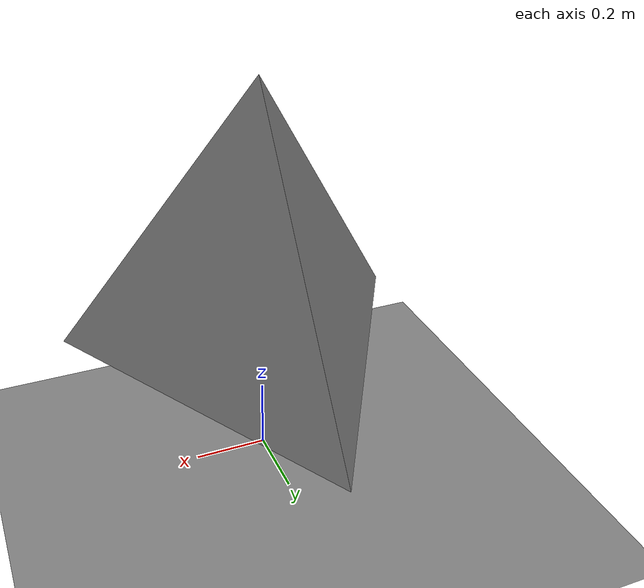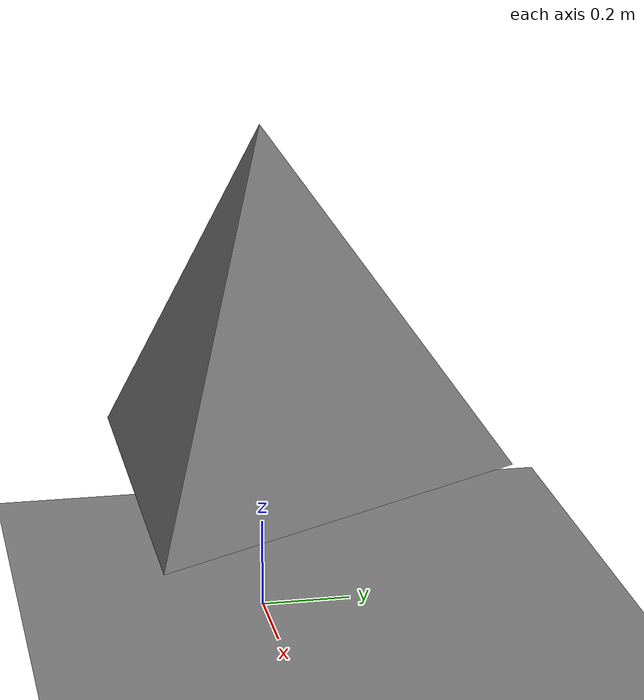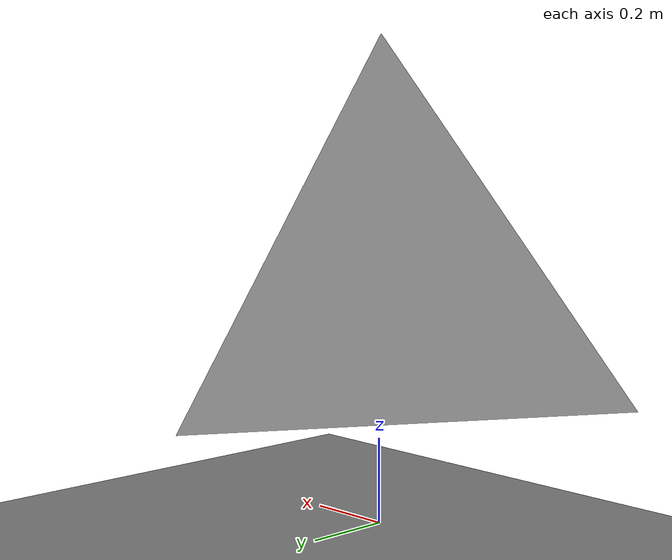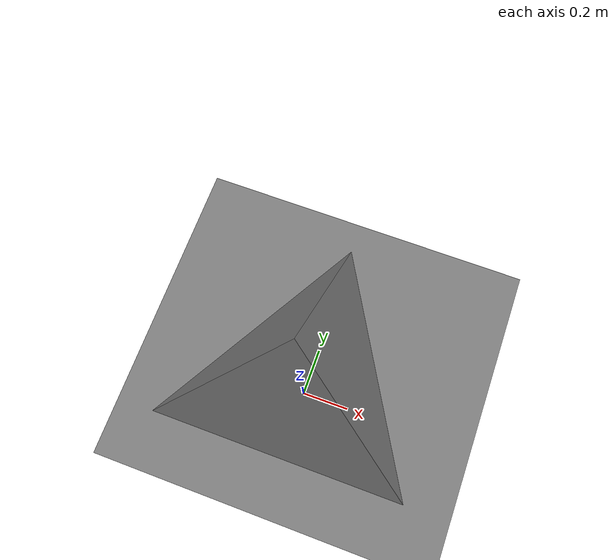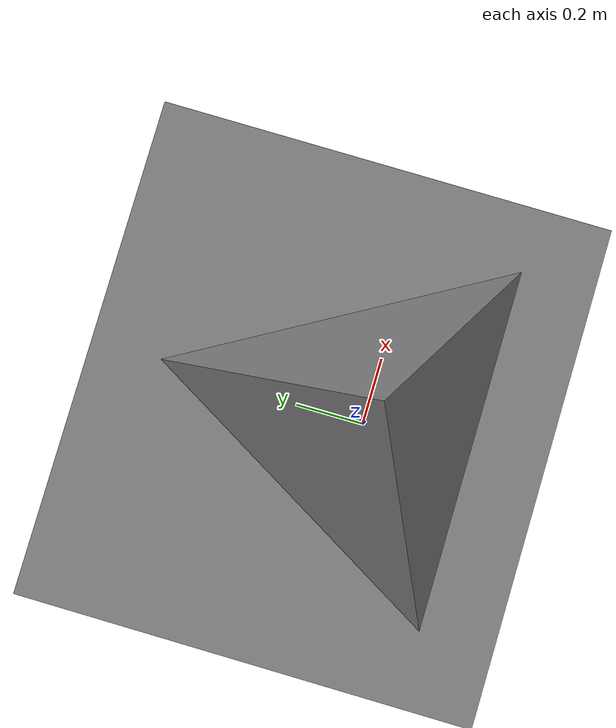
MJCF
<mujoco model="mesh-on-plane">
  <option gravity="0 0 -9.81" timestep="0.001" integrator="RK4"/>

  <asset>
    <mesh name="tetra"
          vertex="-0.5 -0.28868 -0.20412
                   0.5 -0.28868 -0.20412
                   0.0  0.57735 -0.20412
                   0.0  0.0      0.61237"
          face="0 2 1  0 1 3  1 2 3  0 3 2"/>
  </asset>

  <worldbody>
    <geom type="plane" size="2 2 0.01"/>
    <body name="tetra" pos="0 0 0.5">
      <joint type="free"/>
      <geom name="tetra" type="mesh" mesh="tetra" density="1000"/>
    </body>
  </worldbody>
</mujoco>
